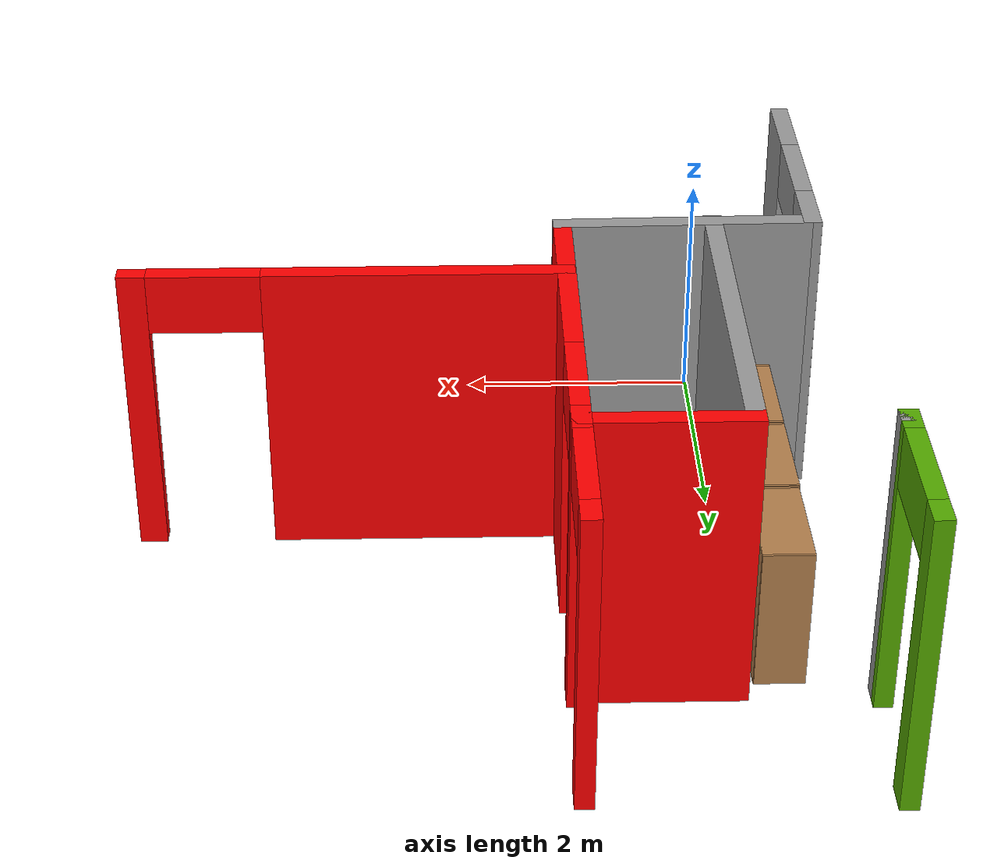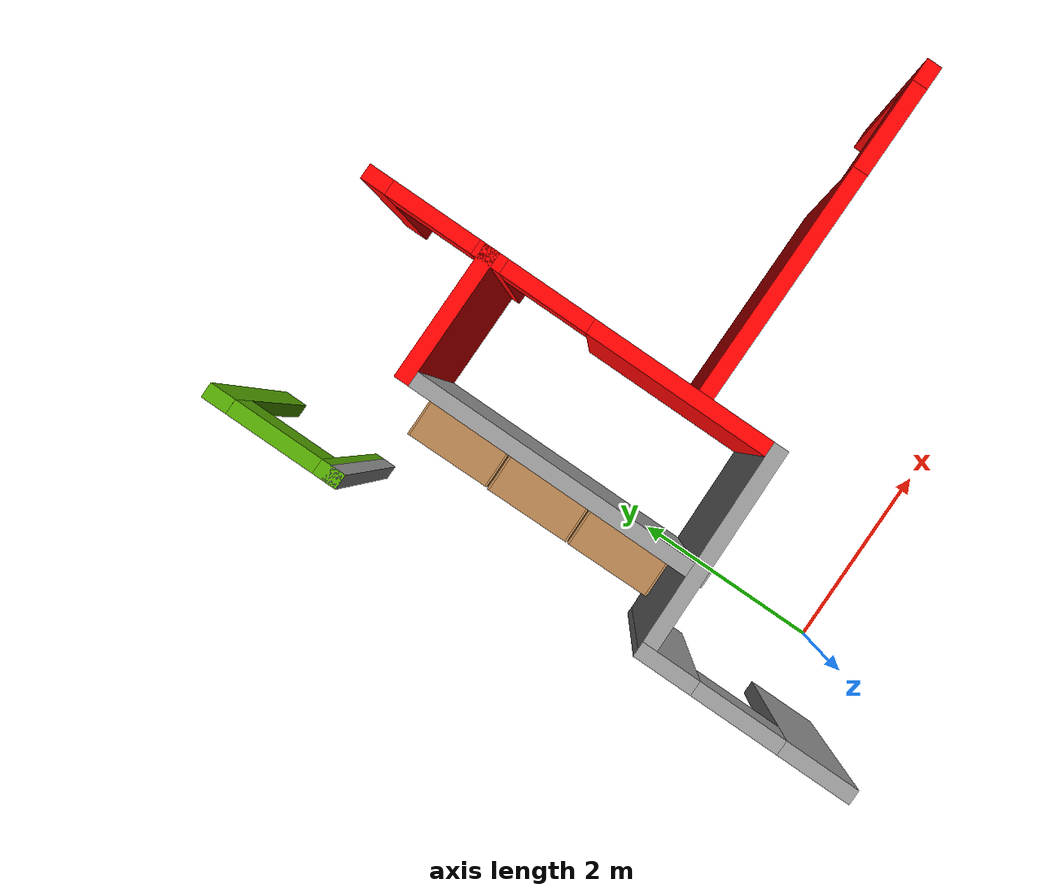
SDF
<sdf version="1.6">
 <world name="default">
  <model name="1floorHouse">
   <link name="Wall_300">
    <pose>-0.789795 0.509996 0 0 0 -1.5708</pose>
    <visual name="Wall_300_Visual_0">
     <pose>-0.8265 0 1.25 0 -0 0</pose>
     <geometry><box><size>0.597 0.15 2.5</size></box></geometry>
     <material>
      <script><uri>file://media/materials/scripts/gazebo.material</uri><name>Gazebo/Grey</name></script>
      <ambient>1 1 1 1</ambient>
      <diffuse>0.7 0.7 0.7 1</diffuse>
      <specular>0.01 0.01 0.01 1</specular>
      <emissive>0 0 0 1</emissive>
     </material>
    </visual>
    <visual name="Wall_300_Visual_1">
     <pose>0.7485 0 1.25 0 -0 0</pose>
     <geometry><box><size>0.753 0.15 2.5</size></box></geometry>
     <material>
      <script><uri>file://media/materials/scripts/gazebo.material</uri><name>Gazebo/Grey</name></script>
      <ambient>1 1 1 1</ambient>
      <diffuse>0.7 0.7 0.7 1</diffuse>
      <specular>0.01 0.01 0.01 1</specular>
      <emissive>0 0 0 1</emissive>
     </material>
    </visual>
    <visual name="Wall_300_Visual_2">
     <pose>-0.078 0 2.25 0 -0 0</pose>
     <geometry><box><size>0.9 0.15 0.5</size></box></geometry>
     <material>
      <script><uri>file://media/materials/scripts/gazebo.material</uri><name>Gazebo/Grey</name></script>
      <ambient>1 1 1 1</ambient>
      <diffuse>0.7 0.7 0.7 1</diffuse>
      <specular>0.01 0.01 0.01 1</specular>
      <emissive>0 0 0 1</emissive>
     </material>
    </visual>
    <collision name="Wall_300_Collision_0">
     <pose>-0.8265 0 1.25 0 -0 0</pose>
     <geometry><box><size>0.597 0.15 2.5</size></box></geometry>
     <surface>
      <friction>
       <ode><mu>1</mu><mu2>1</mu2><fdir1>0 0 0</fdir1><slip1>0</slip1><slip2>0</slip2></ode>
       <torsional>
        <coefficient>1</coefficient>
        <patch_radius>0</patch_radius>
        <surface_radius>0</surface_radius>
        <use_patch_radius>1</use_patch_radius>
        <ode><slip>0</slip></ode>
       </torsional>
      </friction>
      <bounce><restitution_coefficient>0</restitution_coefficient><threshold>1e+06</threshold></bounce>
      <contact>
       <collide_without_contact>0</collide_without_contact>
       <collide_without_contact_bitmask>1</collide_without_contact_bitmask>
       <collide_bitmask>1</collide_bitmask>
       <ode>
        <soft_cfm>0</soft_cfm>
        <soft_erp>0.2</soft_erp>
        <kp>1e+13</kp>
        <kd>1</kd>
        <max_vel>0.01</max_vel>
        <min_depth>0</min_depth>
       </ode>
       <bullet>
        <split_impulse>1</split_impulse>
        <split_impulse_penetration_threshold>-0.01</split_impulse_penetration_threshold>
        <soft_cfm>0</soft_cfm>
        <soft_erp>0.2</soft_erp>
        <kp>1e+13</kp>
        <kd>1</kd>
       </bullet>
      </contact>
     </surface>
    </collision>
    <collision name="Wall_300_Collision_1">
     <pose>0.7485 0 1.25 0 -0 0</pose>
     <geometry><box><size>0.753 0.15 2.5</size></box></geometry>
     <surface>
      <friction>
       <ode><mu>1</mu><mu2>1</mu2><fdir1>0 0 0</fdir1><slip1>0</slip1><slip2>0</slip2></ode>
       <torsional>
        <coefficient>1</coefficient>
        <patch_radius>0</patch_radius>
        <surface_radius>0</surface_radius>
        <use_patch_radius>1</use_patch_radius>
        <ode><slip>0</slip></ode>
       </torsional>
      </friction>
      <bounce><restitution_coefficient>0</restitution_coefficient><threshold>1e+06</threshold></bounce>
      <contact>
       <collide_without_contact>0</collide_without_contact>
       <collide_without_contact_bitmask>1</collide_without_contact_bitmask>
       <collide_bitmask>1</collide_bitmask>
       <ode>
        <soft_cfm>0</soft_cfm>
        <soft_erp>0.2</soft_erp>
        <kp>1e+13</kp>
        <kd>1</kd>
        <max_vel>0.01</max_vel>
        <min_depth>0</min_depth>
       </ode>
       <bullet>
        <split_impulse>1</split_impulse>
        <split_impulse_penetration_threshold>-0.01</split_impulse_penetration_threshold>
        <soft_cfm>0</soft_cfm>
        <soft_erp>0.2</soft_erp>
        <kp>1e+13</kp>
        <kd>1</kd>
       </bullet>
      </contact>
     </surface>
    </collision>
    <collision name="Wall_300_Collision_2">
     <pose>-0.078 0 2.25 0 -0 0</pose>
     <geometry><box><size>0.9 0.15 0.5</size></box></geometry>
     <surface>
      <friction>
       <ode><mu>1</mu><mu2>1</mu2><fdir1>0 0 0</fdir1><slip1>0</slip1><slip2>0</slip2></ode>
       <torsional>
        <coefficient>1</coefficient>
        <patch_radius>0</patch_radius>
        <surface_radius>0</surface_radius>
        <use_patch_radius>1</use_patch_radius>
        <ode><slip>0</slip></ode>
       </torsional>
      </friction>
      <bounce><restitution_coefficient>0</restitution_coefficient><threshold>1e+06</threshold></bounce>
      <contact>
       <collide_without_contact>0</collide_without_contact>
       <collide_without_contact_bitmask>1</collide_without_contact_bitmask>
       <collide_bitmask>1</collide_bitmask>
       <ode>
        <soft_cfm>0</soft_cfm>
        <soft_erp>0.2</soft_erp>
        <kp>1e+13</kp>
        <kd>1</kd>
        <max_vel>0.01</max_vel>
        <min_depth>0</min_depth>
       </ode>
       <bullet>
        <split_impulse>1</split_impulse>
        <split_impulse_penetration_threshold>-0.01</split_impulse_penetration_threshold>
        <soft_cfm>0</soft_cfm>
        <soft_erp>0.2</soft_erp>
        <kp>1e+13</kp>
        <kd>1</kd>
       </bullet>
      </contact>
     </surface>
    </collision>
   </link>
   <link name="Wall_312">
    <pose>0.235204 1.58011 0 0 -0 0.01962</pose>
    <visual name="Wall_312_Visual">
     <pose>0 0 1.25 0 -0 0</pose>
     <geometry><box><size>2.20039 0.15 2.5</size></box></geometry>
     <material>
      <script><uri>file://media/materials/scripts/gazebo.material</uri><name>Gazebo/Grey</name></script>
      <ambient>1 1 1 1</ambient>
      <diffuse>0.7 0.7 0.7 1</diffuse>
      <specular>0.01 0.01 0.01 1</specular>
      <emissive>0 0 0 1</emissive>
     </material>
    </visual>
    <collision name="Wall_312_Collision">
     <pose>0 0 1.25 0 -0 0</pose>
     <geometry><box><size>2.20039 0.15 2.5</size></box></geometry>
     <surface>
      <friction>
       <ode><mu>1</mu><mu2>1</mu2><fdir1>0 0 0</fdir1><slip1>0</slip1><slip2>0</slip2></ode>
       <torsional>
        <coefficient>1</coefficient>
        <patch_radius>0</patch_radius>
        <surface_radius>0</surface_radius>
        <use_patch_radius>1</use_patch_radius>
        <ode><slip>0</slip></ode>
       </torsional>
      </friction>
      <bounce><restitution_coefficient>0</restitution_coefficient><threshold>1e+06</threshold></bounce>
      <contact>
       <collide_without_contact>0</collide_without_contact>
       <collide_without_contact_bitmask>1</collide_without_contact_bitmask>
       <collide_bitmask>1</collide_bitmask>
       <ode>
        <soft_cfm>0</soft_cfm>
        <soft_erp>0.2</soft_erp>
        <kp>1e+13</kp>
        <kd>1</kd>
        <max_vel>0.01</max_vel>
        <min_depth>0</min_depth>
       </ode>
       <bullet>
        <split_impulse>1</split_impulse>
        <split_impulse_penetration_threshold>-0.01</split_impulse_penetration_threshold>
        <soft_cfm>0</soft_cfm>
        <soft_erp>0.2</soft_erp>
        <kp>1e+13</kp>
        <kd>1</kd>
       </bullet>
      </contact>
     </surface>
    </collision>
   </link>
   <link name="Wall_313">
    <pose>1.26021 3.10511 0 0 -0 1.5708</pose>
    <visual name="Wall_313_Visual_0">
     <pose>-0.572109 0 1.25 0 -0 0</pose>
     <geometry><box><size>2.01555 0.15 2.5</size></box></geometry>
     <material>
      <script><uri>file://media/materials/scripts/gazebo.material</uri><name>Gazebo/Grey</name></script>
      <ambient>1 0 0 1</ambient>
      <diffuse>0.7 0.7 0.7 1</diffuse>
      <specular>0.01 0.01 0.01 1</specular>
      <emissive>0 0 0 1</emissive>
     </material>
    </visual>
    <visual name="Wall_313_Visual_2">
     <pose>0.885669 0 2.25 0 -0 0</pose>
     <geometry><box><size>0.9 0.15 0.5</size></box></geometry>
     <material>
      <script><uri>file://media/materials/scripts/gazebo.material</uri><name>Gazebo/Grey</name></script>
      <ambient>1 0 0 1</ambient>
      <diffuse>0.7 0.7 0.7 1</diffuse>
      <specular>0.01 0.01 0.01 1</specular>
      <emissive>0 0 0 1</emissive>
     </material>
    </visual>
    <visual name="Wall_313_Visual_1">
     <pose>1.45778 0 1.25 0 -0 0</pose>
     <geometry><box><size>0.244218 0.15 2.5</size></box></geometry>
     <material>
      <script><uri>file://media/materials/scripts/gazebo.material</uri><name>Gazebo/Grey</name></script>
      <ambient>1 0 0 1</ambient>
      <diffuse>0.7 0.7 0.7 1</diffuse>
      <specular>0.01 0.01 0.01 1</specular>
      <emissive>0 0 0 1</emissive>
     </material>
    </visual>
    <collision name="Wall_313_Collision_1">
     <pose>1.45778 0 1.25 0 -0 0</pose>
     <geometry><box><size>0.244218 0.15 2.5</size></box></geometry>
     <surface>
      <friction>
       <ode><mu>1</mu><mu2>1</mu2><fdir1>0 0 0</fdir1><slip1>0</slip1><slip2>0</slip2></ode>
       <torsional>
        <coefficient>1</coefficient>
        <patch_radius>0</patch_radius>
        <surface_radius>0</surface_radius>
        <use_patch_radius>1</use_patch_radius>
        <ode><slip>0</slip></ode>
       </torsional>
      </friction>
      <bounce><restitution_coefficient>0</restitution_coefficient><threshold>1e+06</threshold></bounce>
      <contact>
       <collide_without_contact>0</collide_without_contact>
       <collide_without_contact_bitmask>1</collide_without_contact_bitmask>
       <collide_bitmask>1</collide_bitmask>
       <ode>
        <soft_cfm>0</soft_cfm>
        <soft_erp>0.2</soft_erp>
        <kp>1e+13</kp>
        <kd>1</kd>
        <max_vel>0.01</max_vel>
        <min_depth>0</min_depth>
       </ode>
       <bullet>
        <split_impulse>1</split_impulse>
        <split_impulse_penetration_threshold>-0.01</split_impulse_penetration_threshold>
        <soft_cfm>0</soft_cfm>
        <soft_erp>0.2</soft_erp>
        <kp>1e+13</kp>
        <kd>1</kd>
       </bullet>
      </contact>
     </surface>
    </collision>
    <collision name="Wall_313_Collision_0">
     <pose>-0.572109 0 1.25 0 -0 0</pose>
     <geometry><box><size>2.01555 0.15 2.5</size></box></geometry>
     <surface>
      <friction>
       <ode><mu>1</mu><mu2>1</mu2><fdir1>0 0 0</fdir1><slip1>0</slip1><slip2>0</slip2></ode>
       <torsional>
        <coefficient>1</coefficient>
        <patch_radius>0</patch_radius>
        <surface_radius>0</surface_radius>
        <use_patch_radius>1</use_patch_radius>
        <ode><slip>0</slip></ode>
       </torsional>
      </friction>
      <bounce><restitution_coefficient>0</restitution_coefficient><threshold>1e+06</threshold></bounce>
      <contact>
       <collide_without_contact>0</collide_without_contact>
       <collide_without_contact_bitmask>1</collide_without_contact_bitmask>
       <collide_bitmask>1</collide_bitmask>
       <ode>
        <soft_cfm>0</soft_cfm>
        <soft_erp>0.2</soft_erp>
        <kp>1e+13</kp>
        <kd>1</kd>
        <max_vel>0.01</max_vel>
        <min_depth>0</min_depth>
       </ode>
       <bullet>
        <split_impulse>1</split_impulse>
        <split_impulse_penetration_threshold>-0.01</split_impulse_penetration_threshold>
        <soft_cfm>0</soft_cfm>
        <soft_erp>0.2</soft_erp>
        <kp>1e+13</kp>
        <kd>1</kd>
       </bullet>
      </contact>
     </surface>
    </collision>
    <collision name="Wall_313_Collision_2">
     <pose>0.885669 0 2.25 0 -0 0</pose>
     <geometry><box><size>0.9 0.15 0.5</size></box></geometry>
     <surface>
      <friction>
       <ode><mu>1</mu><mu2>1</mu2><fdir1>0 0 0</fdir1><slip1>0</slip1><slip2>0</slip2></ode>
       <torsional>
        <coefficient>1</coefficient>
        <patch_radius>0</patch_radius>
        <surface_radius>0</surface_radius>
        <use_patch_radius>1</use_patch_radius>
        <ode><slip>0</slip></ode>
       </torsional>
      </friction>
      <bounce><restitution_coefficient>0</restitution_coefficient><threshold>1e+06</threshold></bounce>
      <contact>
       <collide_without_contact>0</collide_without_contact>
       <collide_without_contact_bitmask>1</collide_without_contact_bitmask>
       <collide_bitmask>1</collide_bitmask>
       <ode>
        <soft_cfm>0</soft_cfm>
        <soft_erp>0.2</soft_erp>
        <kp>1e+13</kp>
        <kd>1</kd>
        <max_vel>0.01</max_vel>
        <min_depth>0</min_depth>
       </ode>
       <bullet>
        <split_impulse>1</split_impulse>
        <split_impulse_penetration_threshold>-0.01</split_impulse_penetration_threshold>
        <soft_cfm>0</soft_cfm>
        <soft_erp>0.2</soft_erp>
        <kp>1e+13</kp>
        <kd>1</kd>
       </bullet>
      </contact>
     </surface>
    </collision>
   </link>
   <link name="Wall_314">
    <pose>0.641704 4.61 0 0 -0 3.14159</pose>
    <visual name="Wall_314_Visual">
     <pose>0 0 1.25 0 -0 0</pose>
     <geometry><box><size>1.387 0.15 2.5</size></box></geometry>
     <material>
      <script><uri>file://media/materials/scripts/gazebo.material</uri><name>Gazebo/Grey</name></script>
      <ambient>1 0 0 1</ambient>
      <diffuse>0.7 0.7 0.7 1</diffuse>
      <specular>0.01 0.01 0.01 1</specular>
      <emissive>0 0 0 1</emissive>
     </material>
    </visual>
    <collision name="Wall_314_Collision">
     <pose>0 0 1.25 0 -0 0</pose>
     <geometry><box><size>1.387 0.15 2.5</size></box></geometry>
     <surface>
      <friction>
       <ode><mu>1</mu><mu2>1</mu2><fdir1>0 0 0</fdir1><slip1>0</slip1><slip2>0</slip2></ode>
       <torsional>
        <coefficient>1</coefficient>
        <patch_radius>0</patch_radius>
        <surface_radius>0</surface_radius>
        <use_patch_radius>1</use_patch_radius>
        <ode><slip>0</slip></ode>
       </torsional>
      </friction>
      <bounce><restitution_coefficient>0</restitution_coefficient><threshold>1e+06</threshold></bounce>
      <contact>
       <collide_without_contact>0</collide_without_contact>
       <collide_without_contact_bitmask>1</collide_without_contact_bitmask>
       <collide_bitmask>1</collide_bitmask>
       <ode>
        <soft_cfm>0</soft_cfm>
        <soft_erp>0.2</soft_erp>
        <kp>1e+13</kp>
        <kd>1</kd>
        <max_vel>0.01</max_vel>
        <min_depth>0</min_depth>
       </ode>
       <bullet>
        <split_impulse>1</split_impulse>
        <split_impulse_penetration_threshold>-0.01</split_impulse_penetration_threshold>
        <soft_cfm>0</soft_cfm>
        <soft_erp>0.2</soft_erp>
        <kp>1e+13</kp>
        <kd>1</kd>
       </bullet>
      </contact>
     </surface>
    </collision>
   </link>
   <link name="Wall_315">
    <pose>0.023205 3.085 0 0 0 -1.5708</pose>
    <visual name="Wall_315_Visual">
     <pose>0 0 1.25 0 -0 0</pose>
     <geometry><box><size>3.2 0.15 2.5</size></box></geometry>
     <material>
      <script><uri>file://media/materials/scripts/gazebo.material</uri><name>Gazebo/Grey</name></script>
      <ambient>1 1 1 1</ambient>
      <diffuse>0.7 0.7 0.7 1</diffuse>
      <specular>0.01 0.01 0.01 1</specular>
      <emissive>0 0 0 1</emissive>
     </material>
    </visual>
    <collision name="Wall_315_Collision">
     <pose>0 0 1.25 0 -0 0</pose>
     <geometry><box><size>3.2 0.15 2.5</size></box></geometry>
     <surface>
      <friction>
       <ode><mu>1</mu><mu2>1</mu2><fdir1>0 0 0</fdir1><slip1>0</slip1><slip2>0</slip2></ode>
       <torsional>
        <coefficient>1</coefficient>
        <patch_radius>0</patch_radius>
        <surface_radius>0</surface_radius>
        <use_patch_radius>1</use_patch_radius>
        <ode><slip>0</slip></ode>
       </torsional>
      </friction>
      <bounce><restitution_coefficient>0</restitution_coefficient><threshold>1e+06</threshold></bounce>
      <contact>
       <collide_without_contact>0</collide_without_contact>
       <collide_without_contact_bitmask>1</collide_without_contact_bitmask>
       <collide_bitmask>1</collide_bitmask>
       <ode>
        <soft_cfm>0</soft_cfm>
        <soft_erp>0.2</soft_erp>
        <kp>1e+13</kp>
        <kd>1</kd>
        <max_vel>0.01</max_vel>
        <min_depth>0</min_depth>
       </ode>
       <bullet>
        <split_impulse>1</split_impulse>
        <split_impulse_penetration_threshold>-0.01</split_impulse_penetration_threshold>
        <soft_cfm>0</soft_cfm>
        <soft_erp>0.2</soft_erp>
        <kp>1e+13</kp>
        <kd>1</kd>
       </bullet>
      </contact>
     </surface>
    </collision>
   </link>
   <link name="Wall_320">
    <pose>-1.0598 5.245 0 0 0 -1.5708</pose>
    <visual name="Wall_320_Visual_0">
     <pose>-0.572184 0 1.25 0 -0 0</pose>
     <geometry><box><size>0.255633 0.15 2.5</size></box></geometry>
     <material>
      <script><uri>file://media/materials/scripts/gazebo.material</uri><name>Gazebo/Grey</name></script>
      <ambient>0.333333 0.666667 0 1</ambient>
      <diffuse>0.7 0.7 0.7 1</diffuse>
      <specular>0.01 0.01 0.01 1</specular>
      <emissive>0 0 0 1</emissive>
     </material>
    </visual>
    <visual name="Wall_320_Visual_1">
     <pose>0.577816 0 1.25 0 -0 0</pose>
     <geometry><box><size>0.244367 0.15 2.5</size></box></geometry>
     <material>
      <script><uri>file://media/materials/scripts/gazebo.material</uri><name>Gazebo/Grey</name></script>
      <ambient>0.333333 0.666667 0 1</ambient>
      <diffuse>0.7 0.7 0.7 1</diffuse>
      <specular>0.01 0.01 0.01 1</specular>
      <emissive>0 0 0 1</emissive>
     </material>
    </visual>
    <visual name="Wall_320_Visual_2">
     <pose>0.005633 0 2.25 0 -0 0</pose>
     <geometry><box><size>0.9 0.15 0.5</size></box></geometry>
     <material>
      <script><uri>file://media/materials/scripts/gazebo.material</uri><name>Gazebo/Grey</name></script>
      <ambient>0.333333 0.666667 0 1</ambient>
      <diffuse>0.7 0.7 0.7 1</diffuse>
      <specular>0.01 0.01 0.01 1</specular>
      <emissive>0 0 0 1</emissive>
     </material>
    </visual>
    <collision name="Wall_320_Collision_0">
     <pose>-0.572184 0 1.25 0 -0 0</pose>
     <geometry><box><size>0.255633 0.15 2.5</size></box></geometry>
     <surface>
      <friction>
       <ode><mu>1</mu><mu2>1</mu2><fdir1>0 0 0</fdir1><slip1>0</slip1><slip2>0</slip2></ode>
       <torsional>
        <coefficient>1</coefficient>
        <patch_radius>0</patch_radius>
        <surface_radius>0</surface_radius>
        <use_patch_radius>1</use_patch_radius>
        <ode><slip>0</slip></ode>
       </torsional>
      </friction>
      <bounce><restitution_coefficient>0</restitution_coefficient><threshold>1e+06</threshold></bounce>
      <contact>
       <collide_without_contact>0</collide_without_contact>
       <collide_without_contact_bitmask>1</collide_without_contact_bitmask>
       <collide_bitmask>1</collide_bitmask>
       <ode>
        <soft_cfm>0</soft_cfm>
        <soft_erp>0.2</soft_erp>
        <kp>1e+13</kp>
        <kd>1</kd>
        <max_vel>0.01</max_vel>
        <min_depth>0</min_depth>
       </ode>
       <bullet>
        <split_impulse>1</split_impulse>
        <split_impulse_penetration_threshold>-0.01</split_impulse_penetration_threshold>
        <soft_cfm>0</soft_cfm>
        <soft_erp>0.2</soft_erp>
        <kp>1e+13</kp>
        <kd>1</kd>
       </bullet>
      </contact>
     </surface>
    </collision>
    <collision name="Wall_320_Collision_2">
     <pose>0.005633 0 2.25 0 -0 0</pose>
     <geometry><box><size>0.9 0.15 0.5</size></box></geometry>
     <surface>
      <friction>
       <ode><mu>1</mu><mu2>1</mu2><fdir1>0 0 0</fdir1><slip1>0</slip1><slip2>0</slip2></ode>
       <torsional>
        <coefficient>1</coefficient>
        <patch_radius>0</patch_radius>
        <surface_radius>0</surface_radius>
        <use_patch_radius>1</use_patch_radius>
        <ode><slip>0</slip></ode>
       </torsional>
      </friction>
      <bounce><restitution_coefficient>0</restitution_coefficient><threshold>1e+06</threshold></bounce>
      <contact>
       <collide_without_contact>0</collide_without_contact>
       <collide_without_contact_bitmask>1</collide_without_contact_bitmask>
       <collide_bitmask>1</collide_bitmask>
       <ode>
        <soft_cfm>0</soft_cfm>
        <soft_erp>0.2</soft_erp>
        <kp>1e+13</kp>
        <kd>1</kd>
        <max_vel>0.01</max_vel>
        <min_depth>0</min_depth>
       </ode>
       <bullet>
        <split_impulse>1</split_impulse>
        <split_impulse_penetration_threshold>-0.01</split_impulse_penetration_threshold>
        <soft_cfm>0</soft_cfm>
        <soft_erp>0.2</soft_erp>
        <kp>1e+13</kp>
        <kd>1</kd>
       </bullet>
      </contact>
     </surface>
    </collision>
    <collision name="Wall_320_Collision_1">
     <pose>0.577816 0 1.25 0 -0 0</pose>
     <geometry><box><size>0.244367 0.15 2.5</size></box></geometry>
     <surface>
      <friction>
       <ode><mu>1</mu><mu2>1</mu2><fdir1>0 0 0</fdir1><slip1>0</slip1><slip2>0</slip2></ode>
       <torsional>
        <coefficient>1</coefficient>
        <patch_radius>0</patch_radius>
        <surface_radius>0</surface_radius>
        <use_patch_radius>1</use_patch_radius>
        <ode><slip>0</slip></ode>
       </torsional>
      </friction>
      <bounce><restitution_coefficient>0</restitution_coefficient><threshold>1e+06</threshold></bounce>
      <contact>
       <collide_without_contact>0</collide_without_contact>
       <collide_without_contact_bitmask>1</collide_without_contact_bitmask>
       <collide_bitmask>1</collide_bitmask>
       <ode>
        <soft_cfm>0</soft_cfm>
        <soft_erp>0.2</soft_erp>
        <kp>1e+13</kp>
        <kd>1</kd>
        <max_vel>0.01</max_vel>
        <min_depth>0</min_depth>
       </ode>
       <bullet>
        <split_impulse>1</split_impulse>
        <split_impulse_penetration_threshold>-0.01</split_impulse_penetration_threshold>
        <soft_cfm>0</soft_cfm>
        <soft_erp>0.2</soft_erp>
        <kp>1e+13</kp>
        <kd>1</kd>
       </bullet>
      </contact>
     </surface>
    </collision>
   </link>
   <link name="Wall_321">
    <pose>-1.0598 4.62 0 0 -0 0</pose>
    <visual name="Wall_321_Visual">
     <pose>0 0 1.25 0 -0 0</pose>
     <geometry><box><size>0.15 0.15 2.5</size></box></geometry>
     <material>
      <script><uri>file://media/materials/scripts/gazebo.material</uri><name>Gazebo/Grey</name></script>
      <ambient>1 1 1 1</ambient>
      <diffuse>0.7 0.7 0.7 1</diffuse>
      <specular>0.01 0.01 0.01 1</specular>
      <emissive>0 0 0 1</emissive>
     </material>
    </visual>
    <collision name="Wall_321_Collision">
     <pose>0 0 1.25 0 -0 0</pose>
     <geometry><box><size>0.15 0.15 2.5</size></box></geometry>
     <surface>
      <friction>
       <ode><mu>1</mu><mu2>1</mu2><fdir1>0 0 0</fdir1><slip1>0</slip1><slip2>0</slip2></ode>
       <torsional>
        <coefficient>1</coefficient>
        <patch_radius>0</patch_radius>
        <surface_radius>0</surface_radius>
        <use_patch_radius>1</use_patch_radius>
        <ode><slip>0</slip></ode>
       </torsional>
      </friction>
      <bounce><restitution_coefficient>0</restitution_coefficient><threshold>1e+06</threshold></bounce>
      <contact>
       <collide_without_contact>0</collide_without_contact>
       <collide_without_contact_bitmask>1</collide_without_contact_bitmask>
       <collide_bitmask>1</collide_bitmask>
       <ode>
        <soft_cfm>0</soft_cfm>
        <soft_erp>0.2</soft_erp>
        <kp>1e+13</kp>
        <kd>1</kd>
        <max_vel>0.01</max_vel>
        <min_depth>0</min_depth>
       </ode>
       <bullet>
        <split_impulse>1</split_impulse>
        <split_impulse_penetration_threshold>-0.01</split_impulse_penetration_threshold>
        <soft_cfm>0</soft_cfm>
        <soft_erp>0.2</soft_erp>
        <kp>1e+13</kp>
        <kd>1</kd>
       </bullet>
      </contact>
     </surface>
    </collision>
   </link>
   <link name="Wall_322">
    <pose>2.9912 2.388 0 0 -0 0</pose>
    <visual name="Wall_322_Visual_0">
     <pose>-0.562525 0 1.25 0 -0 0</pose>
     <geometry><box><size>2.47495 0.15 2.5</size></box></geometry>
     <material>
      <script><uri>file://media/materials/scripts/gazebo.material</uri><name>Gazebo/Grey</name></script>
      <ambient>1 0 0 1</ambient>
      <diffuse>0.7 0.7 0.7 1</diffuse>
      <specular>0.01 0.01 0.01 1</specular>
      <emissive>0 0 0 1</emissive>
     </material>
    </visual>
    <visual name="Wall_322_Visual_1">
     <pose>1.68748 0 1.25 0 -0 0</pose>
     <geometry><box><size>0.225051 0.15 2.5</size></box></geometry>
     <material>
      <script><uri>file://media/materials/scripts/gazebo.material</uri><name>Gazebo/Grey</name></script>
      <ambient>1 0 0 1</ambient>
      <diffuse>0.7 0.7 0.7 1</diffuse>
      <specular>0.01 0.01 0.01 1</specular>
      <emissive>0 0 0 1</emissive>
     </material>
    </visual>
    <visual name="Wall_322_Visual_2">
     <pose>1.12495 0 2.25 0 -0 0</pose>
     <geometry><box><size>0.9 0.15 0.5</size></box></geometry>
     <material>
      <script><uri>file://media/materials/scripts/gazebo.material</uri><name>Gazebo/Grey</name></script>
      <ambient>1 0 0 1</ambient>
      <diffuse>0.7 0.7 0.7 1</diffuse>
      <specular>0.01 0.01 0.01 1</specular>
      <emissive>0 0 0 1</emissive>
     </material>
    </visual>
    <collision name="Wall_322_Collision_0">
     <pose>-0.562525 0 1.25 0 -0 0</pose>
     <geometry><box><size>2.47495 0.15 2.5</size></box></geometry>
     <surface>
      <friction>
       <ode><mu>1</mu><mu2>1</mu2><fdir1>0 0 0</fdir1><slip1>0</slip1><slip2>0</slip2></ode>
       <torsional>
        <coefficient>1</coefficient>
        <patch_radius>0</patch_radius>
        <surface_radius>0</surface_radius>
        <use_patch_radius>1</use_patch_radius>
        <ode><slip>0</slip></ode>
       </torsional>
      </friction>
      <bounce><restitution_coefficient>0</restitution_coefficient><threshold>1e+06</threshold></bounce>
      <contact>
       <collide_without_contact>0</collide_without_contact>
       <collide_without_contact_bitmask>1</collide_without_contact_bitmask>
       <collide_bitmask>1</collide_bitmask>
       <ode>
        <soft_cfm>0</soft_cfm>
        <soft_erp>0.2</soft_erp>
        <kp>1e+13</kp>
        <kd>1</kd>
        <max_vel>0.01</max_vel>
        <min_depth>0</min_depth>
       </ode>
       <bullet>
        <split_impulse>1</split_impulse>
        <split_impulse_penetration_threshold>-0.01</split_impulse_penetration_threshold>
        <soft_cfm>0</soft_cfm>
        <soft_erp>0.2</soft_erp>
        <kp>1e+13</kp>
        <kd>1</kd>
       </bullet>
      </contact>
     </surface>
    </collision>
    <collision name="Wall_322_Collision_2">
     <pose>1.12495 0 2.25 0 -0 0</pose>
     <geometry><box><size>0.9 0.15 0.5</size></box></geometry>
     <surface>
      <friction>
       <ode><mu>1</mu><mu2>1</mu2><fdir1>0 0 0</fdir1><slip1>0</slip1><slip2>0</slip2></ode>
       <torsional>
        <coefficient>1</coefficient>
        <patch_radius>0</patch_radius>
        <surface_radius>0</surface_radius>
        <use_patch_radius>1</use_patch_radius>
        <ode><slip>0</slip></ode>
       </torsional>
      </friction>
      <bounce><restitution_coefficient>0</restitution_coefficient><threshold>1e+06</threshold></bounce>
      <contact>
       <collide_without_contact>0</collide_without_contact>
       <collide_without_contact_bitmask>1</collide_without_contact_bitmask>
       <collide_bitmask>1</collide_bitmask>
       <ode>
        <soft_cfm>0</soft_cfm>
        <soft_erp>0.2</soft_erp>
        <kp>1e+13</kp>
        <kd>1</kd>
        <max_vel>0.01</max_vel>
        <min_depth>0</min_depth>
       </ode>
       <bullet>
        <split_impulse>1</split_impulse>
        <split_impulse_penetration_threshold>-0.01</split_impulse_penetration_threshold>
        <soft_cfm>0</soft_cfm>
        <soft_erp>0.2</soft_erp>
        <kp>1e+13</kp>
        <kd>1</kd>
       </bullet>
      </contact>
     </surface>
    </collision>
    <collision name="Wall_322_Collision_1">
     <pose>1.68748 0 1.25 0 -0 0</pose>
     <geometry><box><size>0.225051 0.15 2.5</size></box></geometry>
     <surface>
      <friction>
       <ode><mu>1</mu><mu2>1</mu2><fdir1>0 0 0</fdir1><slip1>0</slip1><slip2>0</slip2></ode>
       <torsional>
        <coefficient>1</coefficient>
        <patch_radius>0</patch_radius>
        <surface_radius>0</surface_radius>
        <use_patch_radius>1</use_patch_radius>
        <ode><slip>0</slip></ode>
       </torsional>
      </friction>
      <bounce><restitution_coefficient>0</restitution_coefficient><threshold>1e+06</threshold></bounce>
      <contact>
       <collide_without_contact>0</collide_without_contact>
       <collide_without_contact_bitmask>1</collide_without_contact_bitmask>
       <collide_bitmask>1</collide_bitmask>
       <ode>
        <soft_cfm>0</soft_cfm>
        <soft_erp>0.2</soft_erp>
        <kp>1e+13</kp>
        <kd>1</kd>
        <max_vel>0.01</max_vel>
        <min_depth>0</min_depth>
       </ode>
       <bullet>
        <split_impulse>1</split_impulse>
        <split_impulse_penetration_threshold>-0.01</split_impulse_penetration_threshold>
        <soft_cfm>0</soft_cfm>
        <soft_erp>0.2</soft_erp>
        <kp>1e+13</kp>
        <kd>1</kd>
       </bullet>
      </contact>
     </surface>
    </collision>
   </link>
   <link name="Wall_325">
    <pose>1.26021 5.21 0 0 -0 1.5708</pose>
    <visual name="Wall_325_Visual_0">
     <pose>-0.574505 0 1.25 0 -0 0</pose>
     <geometry><box><size>0.20099 0.15 2.5</size></box></geometry>
     <material>
      <script><uri>file://media/materials/scripts/gazebo.material</uri><name>Gazebo/Grey</name></script>
      <ambient>1 0 0 1</ambient>
      <diffuse>0.7 0.7 0.7 1</diffuse>
      <specular>0.01 0.01 0.01 1</specular>
      <emissive>0 0 0 1</emissive>
     </material>
    </visual>
    <visual name="Wall_325_Visual_1">
     <pose>0.550495 0 1.25 0 -0 0</pose>
     <geometry><box><size>0.24901 0.15 2.5</size></box></geometry>
     <material>
      <script><uri>file://media/materials/scripts/gazebo.material</uri><name>Gazebo/Grey</name></script>
      <ambient>1 0 0 1</ambient>
      <diffuse>0.7 0.7 0.7 1</diffuse>
      <specular>0.01 0.01 0.01 1</specular>
      <emissive>0 0 0 1</emissive>
     </material>
    </visual>
    <visual name="Wall_325_Visual_2">
     <pose>-0.02401 0 2.25 0 -0 0</pose>
     <geometry><box><size>0.9 0.15 0.5</size></box></geometry>
     <material>
      <script><uri>file://media/materials/scripts/gazebo.material</uri><name>Gazebo/Grey</name></script>
      <ambient>1 0 0 1</ambient>
      <diffuse>0.7 0.7 0.7 1</diffuse>
      <specular>0.01 0.01 0.01 1</specular>
      <emissive>0 0 0 1</emissive>
     </material>
    </visual>
    <collision name="Wall_325_Collision_0">
     <pose>-0.574505 0 1.25 0 -0 0</pose>
     <geometry><box><size>0.20099 0.15 2.5</size></box></geometry>
     <surface>
      <friction>
       <ode><mu>1</mu><mu2>1</mu2><fdir1>0 0 0</fdir1><slip1>0</slip1><slip2>0</slip2></ode>
       <torsional>
        <coefficient>1</coefficient>
        <patch_radius>0</patch_radius>
        <surface_radius>0</surface_radius>
        <use_patch_radius>1</use_patch_radius>
        <ode><slip>0</slip></ode>
       </torsional>
      </friction>
      <bounce><restitution_coefficient>0</restitution_coefficient><threshold>1e+06</threshold></bounce>
      <contact>
       <collide_without_contact>0</collide_without_contact>
       <collide_without_contact_bitmask>1</collide_without_contact_bitmask>
       <collide_bitmask>1</collide_bitmask>
       <ode>
        <soft_cfm>0</soft_cfm>
        <soft_erp>0.2</soft_erp>
        <kp>1e+13</kp>
        <kd>1</kd>
        <max_vel>0.01</max_vel>
        <min_depth>0</min_depth>
       </ode>
       <bullet>
        <split_impulse>1</split_impulse>
        <split_impulse_penetration_threshold>-0.01</split_impulse_penetration_threshold>
        <soft_cfm>0</soft_cfm>
        <soft_erp>0.2</soft_erp>
        <kp>1e+13</kp>
        <kd>1</kd>
       </bullet>
      </contact>
     </surface>
    </collision>
    <collision name="Wall_325_Collision_1">
     <pose>0.550495 0 1.25 0 -0 0</pose>
     <geometry><box><size>0.24901 0.15 2.5</size></box></geometry>
     <surface>
      <friction>
       <ode><mu>1</mu><mu2>1</mu2><fdir1>0 0 0</fdir1><slip1>0</slip1><slip2>0</slip2></ode>
       <torsional>
        <coefficient>1</coefficient>
        <patch_radius>0</patch_radius>
        <surface_radius>0</surface_radius>
        <use_patch_radius>1</use_patch_radius>
        <ode><slip>0</slip></ode>
       </torsional>
      </friction>
      <bounce><restitution_coefficient>0</restitution_coefficient><threshold>1e+06</threshold></bounce>
      <contact>
       <collide_without_contact>0</collide_without_contact>
       <collide_without_contact_bitmask>1</collide_without_contact_bitmask>
       <collide_bitmask>1</collide_bitmask>
       <ode>
        <soft_cfm>0</soft_cfm>
        <soft_erp>0.2</soft_erp>
        <kp>1e+13</kp>
        <kd>1</kd>
        <max_vel>0.01</max_vel>
        <min_depth>0</min_depth>
       </ode>
       <bullet>
        <split_impulse>1</split_impulse>
        <split_impulse_penetration_threshold>-0.01</split_impulse_penetration_threshold>
        <soft_cfm>0</soft_cfm>
        <soft_erp>0.2</soft_erp>
        <kp>1e+13</kp>
        <kd>1</kd>
       </bullet>
      </contact>
     </surface>
    </collision>
    <collision name="Wall_325_Collision_2">
     <pose>-0.02401 0 2.25 0 -0 0</pose>
     <geometry><box><size>0.9 0.15 0.5</size></box></geometry>
     <surface>
      <friction>
       <ode><mu>1</mu><mu2>1</mu2><fdir1>0 0 0</fdir1><slip1>0</slip1><slip2>0</slip2></ode>
       <torsional>
        <coefficient>1</coefficient>
        <patch_radius>0</patch_radius>
        <surface_radius>0</surface_radius>
        <use_patch_radius>1</use_patch_radius>
        <ode><slip>0</slip></ode>
       </torsional>
      </friction>
      <bounce><restitution_coefficient>0</restitution_coefficient><threshold>1e+06</threshold></bounce>
      <contact>
       <collide_without_contact>0</collide_without_contact>
       <collide_without_contact_bitmask>1</collide_without_contact_bitmask>
       <collide_bitmask>1</collide_bitmask>
       <ode>
        <soft_cfm>0</soft_cfm>
        <soft_erp>0.2</soft_erp>
        <kp>1e+13</kp>
        <kd>1</kd>
        <max_vel>0.01</max_vel>
        <min_depth>0</min_depth>
       </ode>
       <bullet>
        <split_impulse>1</split_impulse>
        <split_impulse_penetration_threshold>-0.01</split_impulse_penetration_threshold>
        <soft_cfm>0</soft_cfm>
        <soft_erp>0.2</soft_erp>
        <kp>1e+13</kp>
        <kd>1</kd>
       </bullet>
      </contact>
     </surface>
    </collision>
   </link>
   <static>1</static>
   <pose>-0.00883 0.02443 0 0 -0 0</pose>
  </model>
  <model name="ground_plane">
   <static>1</static>
   <link name="link">
    <collision name="collision">
     <geometry><plane><normal>0 0 1</normal><size>100 100</size></plane></geometry>
     <surface>
      <friction><ode><mu>0.75</mu><mu2>0.75</mu2><slip1>0.15</slip1><slip2>0.15</slip2></ode></friction>
     </surface>
    </collision>
   </link>
   <pose>4.38822 -7.98886 0 0 -0 0</pose>
  </model>
  <model name="bookshelf">
   <static>1</static>
   <link name="link">
    <inertial><mass>1</mass></inertial>
    <collision name="back">
     <pose>0 0.005 0.6 0 -0 0</pose>
     <geometry><box><size>0.9 0.01 1.2</size></box></geometry>
    </collision>
    <visual name="visual1">
     <pose>0 0.005 0.6 0 -0 0</pose>
     <geometry><box><size>0.9 0.01 1.2</size></box></geometry>
     <material>
      <script><uri>file://media/materials/scripts/gazebo.material</uri><name>Gazebo/Wood</name></script>
     </material>
    </visual>
    <collision name="left_side">
     <pose>0.45 -0.195 0.6 0 -0 0</pose>
     <geometry><box><size>0.02 0.4 1.2</size></box></geometry>
    </collision>
    <visual name="visual2">
     <pose>0.45 -0.195 0.6 0 -0 0</pose>
     <geometry><box><size>0.02 0.4 1.2</size></box></geometry>
     <material>
      <script><uri>file://media/materials/scripts/gazebo.material</uri><name>Gazebo/Wood</name></script>
     </material>
    </visual>
    <collision name="right_side">
     <pose>-0.45 -0.195 0.6 0 -0 0</pose>
     <geometry><box><size>0.02 0.4 1.2</size></box></geometry>
    </collision>
    <visual name="visual3">
     <pose>-0.45 -0.195 0.6 0 -0 0</pose>
     <geometry><box><size>0.02 0.4 1.2</size></box></geometry>
     <material>
      <script><uri>file://media/materials/scripts/gazebo.material</uri><name>Gazebo/Wood</name></script>
     </material>
    </visual>
    <collision name="bottom">
     <pose>0 -0.195 0.03 0 -0 0</pose>
     <geometry><box><size>0.88 0.4 0.06</size></box></geometry>
    </collision>
    <visual name="visual4">
     <pose>0 -0.195 0.03 0 -0 0</pose>
     <geometry><box><size>0.88 0.4 0.06</size></box></geometry>
     <material>
      <script><uri>file://media/materials/scripts/gazebo.material</uri><name>Gazebo/Wood</name></script>
     </material>
    </visual>
    <collision name="top">
     <pose>0 -0.195 1.19 0 -0 0</pose>
     <geometry><box><size>0.88 0.4 0.02</size></box></geometry>
    </collision>
    <visual name="visual5">
     <pose>0 -0.195 1.19 0 -0 0</pose>
     <geometry><box><size>0.88 0.4 0.02</size></box></geometry>
     <material>
      <script><uri>file://media/materials/scripts/gazebo.material</uri><name>Gazebo/Wood</name></script>
     </material>
    </visual>
    <collision name="low_shelf">
     <pose>0 -0.195 0.43 0 -0 0</pose>
     <geometry><box><size>0.88 0.4 0.02</size></box></geometry>
    </collision>
    <visual name="visual6">
     <pose>0 -0.195 0.43 0 -0 0</pose>
     <geometry><box><size>0.88 0.4 0.02</size></box></geometry>
     <material>
      <script><uri>file://media/materials/scripts/gazebo.material</uri><name>Gazebo/Wood</name></script>
     </material>
    </visual>
    <collision name="high_shelf">
     <pose>0 -0.195 0.8 0 -0 0</pose>
     <geometry><box><size>0.88 0.4 0.02</size></box></geometry>
    </collision>
    <visual name="visual7">
     <pose>0 -0.195 0.8 0 -0 0</pose>
     <geometry><box><size>0.88 0.4 0.02</size></box></geometry>
     <material>
      <script><uri>file://media/materials/scripts/gazebo.material</uri><name>Gazebo/Wood</name></script>
     </material>
    </visual>
   </link>
   <pose>-0.118093 2.18415 0 0 0 -1.56215</pose>
  </model>
  <model name="bookshelf_clone">
   <static>1</static>
   <link name="link">
    <inertial><mass>1</mass></inertial>
    <collision name="back">
     <pose>0 0.005 0.6 0 -0 0</pose>
     <geometry><box><size>0.9 0.01 1.2</size></box></geometry>
    </collision>
    <visual name="visual1">
     <pose>0 0.005 0.6 0 -0 0</pose>
     <geometry><box><size>0.9 0.01 1.2</size></box></geometry>
     <material>
      <script><uri>file://media/materials/scripts/gazebo.material</uri><name>Gazebo/Wood</name></script>
     </material>
    </visual>
    <collision name="left_side">
     <pose>0.45 -0.195 0.6 0 -0 0</pose>
     <geometry><box><size>0.02 0.4 1.2</size></box></geometry>
    </collision>
    <visual name="visual2">
     <pose>0.45 -0.195 0.6 0 -0 0</pose>
     <geometry><box><size>0.02 0.4 1.2</size></box></geometry>
     <material>
      <script><uri>file://media/materials/scripts/gazebo.material</uri><name>Gazebo/Wood</name></script>
     </material>
    </visual>
    <collision name="right_side">
     <pose>-0.45 -0.195 0.6 0 -0 0</pose>
     <geometry><box><size>0.02 0.4 1.2</size></box></geometry>
    </collision>
    <visual name="visual3">
     <pose>-0.45 -0.195 0.6 0 -0 0</pose>
     <geometry><box><size>0.02 0.4 1.2</size></box></geometry>
     <material>
      <script><uri>file://media/materials/scripts/gazebo.material</uri><name>Gazebo/Wood</name></script>
     </material>
    </visual>
    <collision name="bottom">
     <pose>0 -0.195 0.03 0 -0 0</pose>
     <geometry><box><size>0.88 0.4 0.06</size></box></geometry>
    </collision>
    <visual name="visual4">
     <pose>0 -0.195 0.03 0 -0 0</pose>
     <geometry><box><size>0.88 0.4 0.06</size></box></geometry>
     <material>
      <script><uri>file://media/materials/scripts/gazebo.material</uri><name>Gazebo/Wood</name></script>
     </material>
    </visual>
    <collision name="top">
     <pose>0 -0.195 1.19 0 -0 0</pose>
     <geometry><box><size>0.88 0.4 0.02</size></box></geometry>
    </collision>
    <visual name="visual5">
     <pose>0 -0.195 1.19 0 -0 0</pose>
     <geometry><box><size>0.88 0.4 0.02</size></box></geometry>
     <material>
      <script><uri>file://media/materials/scripts/gazebo.material</uri><name>Gazebo/Wood</name></script>
     </material>
    </visual>
    <collision name="low_shelf">
     <pose>0 -0.195 0.43 0 -0 0</pose>
     <geometry><box><size>0.88 0.4 0.02</size></box></geometry>
    </collision>
    <visual name="visual6">
     <pose>0 -0.195 0.43 0 -0 0</pose>
     <geometry><box><size>0.88 0.4 0.02</size></box></geometry>
     <material>
      <script><uri>file://media/materials/scripts/gazebo.material</uri><name>Gazebo/Wood</name></script>
     </material>
    </visual>
    <collision name="high_shelf">
     <pose>0 -0.195 0.8 0 -0 0</pose>
     <geometry><box><size>0.88 0.4 0.02</size></box></geometry>
    </collision>
    <visual name="visual7">
     <pose>0 -0.195 0.8 0 -0 0</pose>
     <geometry><box><size>0.88 0.4 0.02</size></box></geometry>
     <material>
      <script><uri>file://media/materials/scripts/gazebo.material</uri><name>Gazebo/Wood</name></script>
     </material>
    </visual>
   </link>
   <pose>-0.124686 3.11486 0 0 0 -1.56215</pose>
  </model>
  <model name="bookshelf_clone_clone">
   <static>1</static>
   <link name="link">
    <inertial><mass>1</mass></inertial>
    <collision name="back">
     <pose>0 0.005 0.6 0 -0 0</pose>
     <geometry><box><size>0.9 0.01 1.2</size></box></geometry>
    </collision>
    <visual name="visual1">
     <pose>0 0.005 0.6 0 -0 0</pose>
     <geometry><box><size>0.9 0.01 1.2</size></box></geometry>
     <material>
      <script><uri>file://media/materials/scripts/gazebo.material</uri><name>Gazebo/Wood</name></script>
     </material>
    </visual>
    <collision name="left_side">
     <pose>0.45 -0.195 0.6 0 -0 0</pose>
     <geometry><box><size>0.02 0.4 1.2</size></box></geometry>
    </collision>
    <visual name="visual2">
     <pose>0.45 -0.195 0.6 0 -0 0</pose>
     <geometry><box><size>0.02 0.4 1.2</size></box></geometry>
     <material>
      <script><uri>file://media/materials/scripts/gazebo.material</uri><name>Gazebo/Wood</name></script>
     </material>
    </visual>
    <collision name="right_side">
     <pose>-0.45 -0.195 0.6 0 -0 0</pose>
     <geometry><box><size>0.02 0.4 1.2</size></box></geometry>
    </collision>
    <visual name="visual3">
     <pose>-0.45 -0.195 0.6 0 -0 0</pose>
     <geometry><box><size>0.02 0.4 1.2</size></box></geometry>
     <material>
      <script><uri>file://media/materials/scripts/gazebo.material</uri><name>Gazebo/Wood</name></script>
     </material>
    </visual>
    <collision name="bottom">
     <pose>0 -0.195 0.03 0 -0 0</pose>
     <geometry><box><size>0.88 0.4 0.06</size></box></geometry>
    </collision>
    <visual name="visual4">
     <pose>0 -0.195 0.03 0 -0 0</pose>
     <geometry><box><size>0.88 0.4 0.06</size></box></geometry>
     <material>
      <script><uri>file://media/materials/scripts/gazebo.material</uri><name>Gazebo/Wood</name></script>
     </material>
    </visual>
    <collision name="top">
     <pose>0 -0.195 1.19 0 -0 0</pose>
     <geometry><box><size>0.88 0.4 0.02</size></box></geometry>
    </collision>
    <visual name="visual5">
     <pose>0 -0.195 1.19 0 -0 0</pose>
     <geometry><box><size>0.88 0.4 0.02</size></box></geometry>
     <material>
      <script><uri>file://media/materials/scripts/gazebo.material</uri><name>Gazebo/Wood</name></script>
     </material>
    </visual>
    <collision name="low_shelf">
     <pose>0 -0.195 0.43 0 -0 0</pose>
     <geometry><box><size>0.88 0.4 0.02</size></box></geometry>
    </collision>
    <visual name="visual6">
     <pose>0 -0.195 0.43 0 -0 0</pose>
     <geometry><box><size>0.88 0.4 0.02</size></box></geometry>
     <material>
      <script><uri>file://media/materials/scripts/gazebo.material</uri><name>Gazebo/Wood</name></script>
     </material>
    </visual>
    <collision name="high_shelf">
     <pose>0 -0.195 0.8 0 -0 0</pose>
     <geometry><box><size>0.88 0.4 0.02</size></box></geometry>
    </collision>
    <visual name="visual7">
     <pose>0 -0.195 0.8 0 -0 0</pose>
     <geometry><box><size>0.88 0.4 0.02</size></box></geometry>
     <material>
      <script><uri>file://media/materials/scripts/gazebo.material</uri><name>Gazebo/Wood</name></script>
     </material>
    </visual>
   </link>
   <pose>-0.12207 4.04797 0 0 0 -1.56215</pose>
  </model>
 </world>
</sdf>
